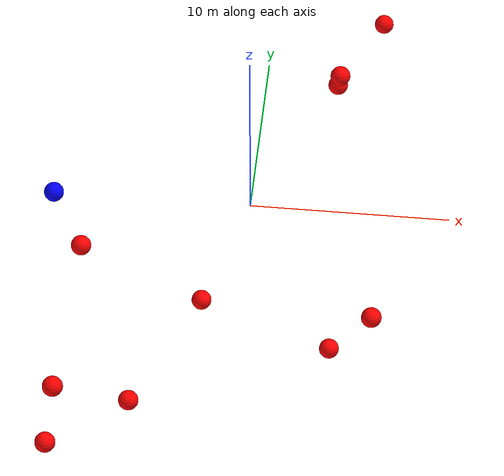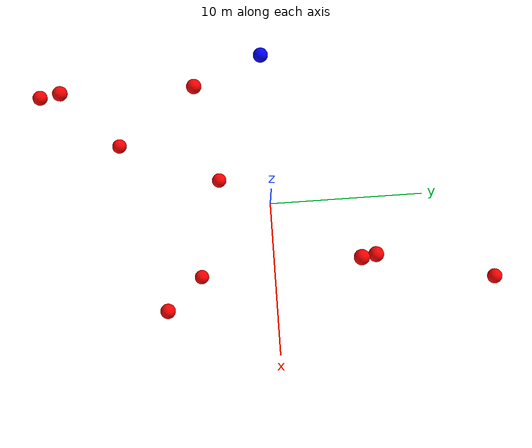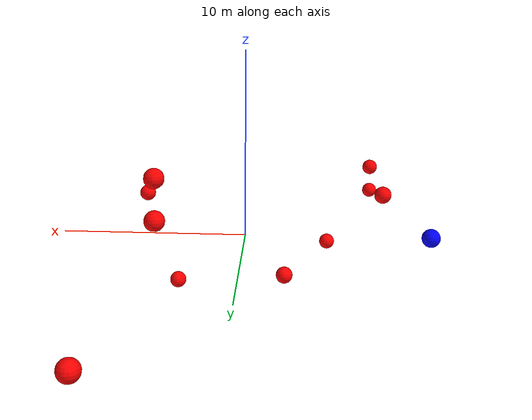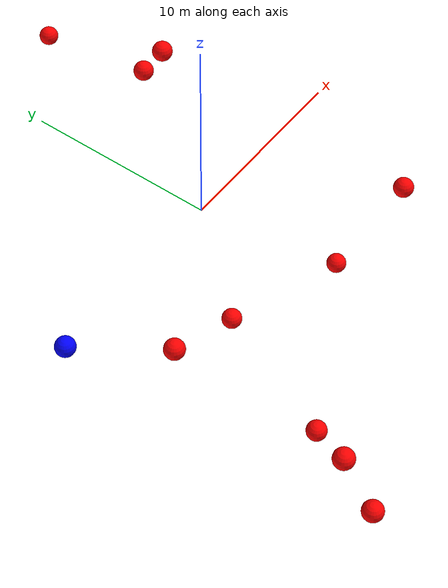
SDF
<?xml version="1.0" ?>
<sdf version="1.8">
    <world name="3d_world">
        <physics name="1ms" type="ode">
            <max_step_size>0.001</max_step_size>
            <real_time_factor>1.0</real_time_factor>
            <real_time_update_rate>1000.0</real_time_update_rate>
        </physics>
        <gravity>0 0 0</gravity>

        <plugin
            filename="gz-sim-physics-system"
            name="gz::sim::v8::systems::Physics">
        </plugin>
        <plugin
            filename="libignition-gazebo-user-commands-system.so"
            name="ignition::gazebo::systems::UserCommands">
        </plugin>
        <plugin
            filename="gz-sim-scene-broadcaster-system"
            name="gz::sim::systems::SceneBroadcaster">
        </plugin>
        <plugin
            filename="gz-sim-sensors-system"
            name="gz::sim::systems::Sensors">
            <render_engine>ogre2</render_engine>
        </plugin>

        <light type="directional" name="sun">
            <cast_shadows>true</cast_shadows>
            <pose>0 0 10 0 0 0</pose>
            <diffuse>0.8 0.8 0.8 1</diffuse>
            <specular>0.2 0.2 0.2 1</specular>
            <attenuation>
                <range>1000</range>
                <constant>0.9</constant>
                <linear>0.01</linear>
                <quadratic>0.001</quadratic>
            </attenuation>
            <direction>-0.5 0.1 -0.9</direction>
        </light>

        <!-- AGENTE -->
        <model name='agente' canonical_link='chassis'>
            <pose relative_to='world'>-10.0 0 0.0 0 0 0</pose>
            <link name='chassis'>
                <pose relative_to='__model__'>0.0 0 0.0 0 0 0</pose>
                <inertial>
                    <mass>1.14395</mass>
                    <inertia>
                        <ixx>0.095329</ixx>
                        <ixy>0</ixy>
                        <ixz>0</ixz>
                        <iyy>0.381317</iyy>
                        <iyz>0</iyz>
                        <izz>0.476646</izz>
                    </inertia>
                </inertial>
                <visual name='visual'>
                    <geometry>
                        <sphere>
                            <radius>0.5</radius>
                        </sphere>
                    </geometry>
                    <material>
                        <ambient>0.0 0.0 1.0 1</ambient>
                        <diffuse>0.0 0.0 1.0 1</diffuse>
                        <specular>0.0 0.0 1.0 1</specular>
                    </material>
                </visual>
                <collision name='collision'>
                    <geometry>
                        <sphere>
                            <radius>0.5</radius>
                        </sphere>
                    </geometry>
                </collision>
                <enable_gravity>false</enable_gravity>
            </link>

            <link name='lidar_link'>
                <pose relative_to='chassis'>0.0 0 0.1 0 0 0</pose>
                <inertial>
                    <mass>0.1</mass>
                    <inertia>
                        <ixx>0.000166667</ixx>
                        <iyy>0.000166667</iyy>
                        <izz>0.000166667</izz>
                    </inertia>
                </inertial>
                <collision name='collision'>
                    <geometry>
                        <cylinder>
                            <radius>0.05</radius>
                            <length>0.1</length>
                        </cylinder>
                    </geometry>
                </collision>
                <visual name='visual'>
                    <geometry>
                        <cylinder>
                            <radius>0.05</radius>
                            <length>0.1</length>
                        </cylinder>
                    </geometry>
                    <material>
                        <ambient>0.0 1.0 0.0 1</ambient>
                        <diffuse>0.0 1.0 0.0 1</diffuse>
                        <specular>0.0 1.0 0.0 1</specular>
                    </material>
                </visual>
                <sensor name="lidar" type="gpu_lidar">
                    <topic>scan</topic>
                    <update_rate>10</update_rate>
                    <lidar>
                        <scan>
                            <horizontal>
                                <samples>5000</samples>
                                <resolution>1</resolution>
                                <min_angle>-3.14159</min_angle>
                                <max_angle>3.14159</max_angle>
                            </horizontal>
                        </scan>
                        <range>
                            <min>0.1</min>
                            <max>10.0</max>
                            <resolution>0.01</resolution>
                        </range>
                    </lidar>
                    <visualize>true</visualize>
                    <always_on>true</always_on>
                    <update_rate>10</update_rate>
                    <pose_frame>lidar</pose_frame>
                </sensor>
                <enable_gravity>false</enable_gravity>
            </link>

            <joint name="lidar_joint" type="fixed">
                <parent>chassis</parent>
                <child>lidar_link</child>
            </joint>

            <plugin
                filename="ignition-gazebo-joint-state-publisher-system"
                name="ignition::gazebo::systems::JointStatePublisher">
            </plugin>
            <plugin
                filename="ignition-gazebo-odometry-publisher-system"
                name="ignition::gazebo::systems::OdometryPublisher">
                <dimensions>3</dimensions>
            </plugin>
            <plugin
                filename="ignition-gazebo-velocity-control-system"
                name="ignition::gazebo::systems::VelocityControl">
                <initial_linear>0.0 0 0</initial_linear>
                <initial_angular>0 0 0.0</initial_angular>
            </plugin>
            <plugin
                filename="libignition-gazebo-pose-publisher-system.so"
                name="ignition::gazebo::systems::PosePublisher">
                <topic>/agente/pose</topic>
                <frame_id>agente</frame_id>
                <update_rate>30</update_rate>
            </plugin>
        </model>

        <!-- OBSTACLE 1 -->
        <model name='obstacle_1' canonical_link='obstacle'>
            <static>false</static>
            <pose relative_to='world'>-8.08 -13.32 1.05 0 0 0</pose>
            <link name='obstacle'>
                <pose relative_to='__model__'>0.0 0 0.0 0 0 0</pose>
                <visual name='visual'>
                    <geometry>
                        <sphere>
                            <radius>0.50</radius>
                        </sphere>
                    </geometry>
                    <material>
                        <ambient>1.0 0.0 0.0 1</ambient>
                        <diffuse>1.0 0.0 0.0 1</diffuse>
                        <specular>1.0 0.0 0.0 1</specular>
                    </material>
                </visual>
                <collision name='collision'>
                    <geometry>
                        <sphere>
                            <radius>0.50</radius>
                        </sphere>
                    </geometry>
                </collision>
                <enable_gravity>false</enable_gravity>
            </link>

            <plugin
                filename="ignition-gazebo-velocity-control-system"
                name="ignition::gazebo::systems::VelocityControl">
                <initial_linear>0.95 1.76 -0.14</initial_linear>
                <initial_angular>0 0 0</initial_angular>
            </plugin>

            <plugin
                filename="ignition-gazebo-odometry-publisher-system"
                name="ignition::gazebo::systems::OdometryPublisher">
                <dimensions>3</dimensions>
            </plugin>
        </model>

        <!-- OBSTACLE 2 -->
        <model name='obstacle_2' canonical_link='obstacle'>
            <static>false</static>
            <pose relative_to='world'>5.76 14.59 -0.85 0 0 0</pose>
            <link name='obstacle'>
                <pose relative_to='__model__'>0.0 0 0.0 0 0 0</pose>
                <visual name='visual'>
                    <geometry>
                        <sphere>
                            <radius>0.50</radius>
                        </sphere>
                    </geometry>
                    <material>
                        <ambient>1.0 0.0 0.0 1</ambient>
                        <diffuse>1.0 0.0 0.0 1</diffuse>
                        <specular>1.0 0.0 0.0 1</specular>
                    </material>
                </visual>
                <collision name='collision'>
                    <geometry>
                        <sphere>
                            <radius>0.50</radius>
                        </sphere>
                    </geometry>
                </collision>
                <enable_gravity>false</enable_gravity>
            </link>

            <plugin
                filename="ignition-gazebo-velocity-control-system"
                name="ignition::gazebo::systems::VelocityControl">
                <initial_linear>-0.05 -2.00 0.12</initial_linear>
                <initial_angular>0 0 0</initial_angular>
            </plugin>

            <plugin
                filename="ignition-gazebo-odometry-publisher-system"
                name="ignition::gazebo::systems::OdometryPublisher">
                <dimensions>3</dimensions>
            </plugin>
        </model>

        <!-- OBSTACLE 3 -->
        <model name='obstacle_3' canonical_link='obstacle'>
            <static>false</static>
            <pose relative_to='world'>6.61 -7.15 0.48 0 0 0</pose>
            <link name='obstacle'>
                <pose relative_to='__model__'>0.0 0 0.0 0 0 0</pose>
                <visual name='visual'>
                    <geometry>
                        <sphere>
                            <radius>0.50</radius>
                        </sphere>
                    </geometry>
                    <material>
                        <ambient>1.0 0.0 0.0 1</ambient>
                        <diffuse>1.0 0.0 0.0 1</diffuse>
                        <specular>1.0 0.0 0.0 1</specular>
                    </material>
                </visual>
                <collision name='collision'>
                    <geometry>
                        <sphere>
                            <radius>0.50</radius>
                        </sphere>
                    </geometry>
                </collision>
                <enable_gravity>false</enable_gravity>
            </link>

            <plugin
                filename="ignition-gazebo-velocity-control-system"
                name="ignition::gazebo::systems::VelocityControl">
                <initial_linear>-1.30 1.52 -0.10</initial_linear>
                <initial_angular>0 0 0</initial_angular>
            </plugin>

            <plugin
                filename="ignition-gazebo-odometry-publisher-system"
                name="ignition::gazebo::systems::OdometryPublisher">
                <dimensions>3</dimensions>
            </plugin>
        </model>

        <!-- OBSTACLE 4 -->
        <model name='obstacle_4' canonical_link='obstacle'>
            <static>false</static>
            <pose relative_to='world'>-2.16 -3.43 -3.53 0 0 0</pose>
            <link name='obstacle'>
                <pose relative_to='__model__'>0.0 0 0.0 0 0 0</pose>
                <visual name='visual'>
                    <geometry>
                        <sphere>
                            <radius>0.50</radius>
                        </sphere>
                    </geometry>
                    <material>
                        <ambient>1.0 0.0 0.0 1</ambient>
                        <diffuse>1.0 0.0 0.0 1</diffuse>
                        <specular>1.0 0.0 0.0 1</specular>
                    </material>
                </visual>
                <collision name='collision'>
                    <geometry>
                        <sphere>
                            <radius>0.50</radius>
                        </sphere>
                    </geometry>
                </collision>
                <enable_gravity>false</enable_gravity>
            </link>

            <plugin
                filename="ignition-gazebo-velocity-control-system"
                name="ignition::gazebo::systems::VelocityControl">
                <initial_linear>-0.39 1.26 1.30</initial_linear>
                <initial_angular>0 0 0</initial_angular>
            </plugin>

            <plugin
                filename="ignition-gazebo-odometry-publisher-system"
                name="ignition::gazebo::systems::OdometryPublisher">
                <dimensions>3</dimensions>
            </plugin>
        </model>

        <!-- OBSTACLE 5 -->
        <model name='obstacle_5' canonical_link='obstacle'>
            <static>false</static>
            <pose relative_to='world'>3.87 6.44 2.55 0 0 0</pose>
            <link name='obstacle'>
                <pose relative_to='__model__'>0.0 0 0.0 0 0 0</pose>
                <visual name='visual'>
                    <geometry>
                        <sphere>
                            <radius>0.50</radius>
                        </sphere>
                    </geometry>
                    <material>
                        <ambient>1.0 0.0 0.0 1</ambient>
                        <diffuse>1.0 0.0 0.0 1</diffuse>
                        <specular>1.0 0.0 0.0 1</specular>
                    </material>
                </visual>
                <collision name='collision'>
                    <geometry>
                        <sphere>
                            <radius>0.50</radius>
                        </sphere>
                    </geometry>
                </collision>
                <enable_gravity>false</enable_gravity>
            </link>

            <plugin
                filename="ignition-gazebo-velocity-control-system"
                name="ignition::gazebo::systems::VelocityControl">
                <initial_linear>0.03 -1.14 -0.45</initial_linear>
                <initial_angular>0 0 0</initial_angular>
            </plugin>

            <plugin
                filename="ignition-gazebo-odometry-publisher-system"
                name="ignition::gazebo::systems::OdometryPublisher">
                <dimensions>3</dimensions>
            </plugin>
        </model>

        <!-- OBSTACLE 6 -->
        <model name='obstacle_6' canonical_link='obstacle'>
            <static>false</static>
            <pose relative_to='world'>-7.93 -4.51 1.22 0 0 0</pose>
            <link name='obstacle'>
                <pose relative_to='__model__'>0.0 0 0.0 0 0 0</pose>
                <visual name='visual'>
                    <geometry>
                        <sphere>
                            <radius>0.50</radius>
                        </sphere>
                    </geometry>
                    <material>
                        <ambient>1.0 0.0 0.0 1</ambient>
                        <diffuse>1.0 0.0 0.0 1</diffuse>
                        <specular>1.0 0.0 0.0 1</specular>
                    </material>
                </visual>
                <collision name='collision'>
                    <geometry>
                        <sphere>
                            <radius>0.50</radius>
                        </sphere>
                    </geometry>
                </collision>
                <enable_gravity>false</enable_gravity>
            </link>

            <plugin
                filename="ignition-gazebo-velocity-control-system"
                name="ignition::gazebo::systems::VelocityControl">
                <initial_linear>1.25 1.51 -0.41</initial_linear>
                <initial_angular>0 0 0</initial_angular>
            </plugin>

            <plugin
                filename="ignition-gazebo-odometry-publisher-system"
                name="ignition::gazebo::systems::OdometryPublisher">
                <dimensions>3</dimensions>
            </plugin>
        </model>

        <!-- OBSTACLE 7 -->
        <model name='obstacle_7' canonical_link='obstacle'>
            <static>false</static>
            <pose relative_to='world'>4.46 -5.12 -4.59 0 0 0</pose>
            <link name='obstacle'>
                <pose relative_to='__model__'>0.0 0 0.0 0 0 0</pose>
                <visual name='visual'>
                    <geometry>
                        <sphere>
                            <radius>0.50</radius>
                        </sphere>
                    </geometry>
                    <material>
                        <ambient>1.0 0.0 0.0 1</ambient>
                        <diffuse>1.0 0.0 0.0 1</diffuse>
                        <specular>1.0 0.0 0.0 1</specular>
                    </material>
                </visual>
                <collision name='collision'>
                    <geometry>
                        <sphere>
                            <radius>0.50</radius>
                        </sphere>
                    </geometry>
                </collision>
                <enable_gravity>false</enable_gravity>
            </link>

            <plugin
                filename="ignition-gazebo-velocity-control-system"
                name="ignition::gazebo::systems::VelocityControl">
                <initial_linear>-1.54 0.95 0.85</initial_linear>
                <initial_angular>0 0 0</initial_angular>
            </plugin>

            <plugin
                filename="ignition-gazebo-odometry-publisher-system"
                name="ignition::gazebo::systems::OdometryPublisher">
                <dimensions>3</dimensions>
            </plugin>
        </model>

        <!-- OBSTACLE 8 -->
        <model name='obstacle_8' canonical_link='obstacle'>
            <static>false</static>
            <pose relative_to='world'>-5.02 -10.23 -3.50 0 0 0</pose>
            <link name='obstacle'>
                <pose relative_to='__model__'>0.0 0 0.0 0 0 0</pose>
                <visual name='visual'>
                    <geometry>
                        <sphere>
                            <radius>0.50</radius>
                        </sphere>
                    </geometry>
                    <material>
                        <ambient>1.0 0.0 0.0 1</ambient>
                        <diffuse>1.0 0.0 0.0 1</diffuse>
                        <specular>1.0 0.0 0.0 1</specular>
                    </material>
                </visual>
                <collision name='collision'>
                    <geometry>
                        <sphere>
                            <radius>0.50</radius>
                        </sphere>
                    </geometry>
                </collision>
                <enable_gravity>false</enable_gravity>
            </link>

            <plugin
                filename="ignition-gazebo-velocity-control-system"
                name="ignition::gazebo::systems::VelocityControl">
                <initial_linear>0.97 1.65 0.57</initial_linear>
                <initial_angular>0 0 0</initial_angular>
            </plugin>

            <plugin
                filename="ignition-gazebo-odometry-publisher-system"
                name="ignition::gazebo::systems::OdometryPublisher">
                <dimensions>3</dimensions>
            </plugin>
        </model>

        <!-- OBSTACLE 9 -->
        <model name='obstacle_9' canonical_link='obstacle'>
            <static>false</static>
            <pose relative_to='world'>4.04 5.35 4.31 0 0 0</pose>
            <link name='obstacle'>
                <pose relative_to='__model__'>0.0 0 0.0 0 0 0</pose>
                <visual name='visual'>
                    <geometry>
                        <sphere>
                            <radius>0.50</radius>
                        </sphere>
                    </geometry>
                    <material>
                        <ambient>1.0 0.0 0.0 1</ambient>
                        <diffuse>1.0 0.0 0.0 1</diffuse>
                        <specular>1.0 0.0 0.0 1</specular>
                    </material>
                </visual>
                <collision name='collision'>
                    <geometry>
                        <sphere>
                            <radius>0.50</radius>
                        </sphere>
                    </geometry>
                </collision>
                <enable_gravity>false</enable_gravity>
            </link>

            <plugin
                filename="ignition-gazebo-velocity-control-system"
                name="ignition::gazebo::systems::VelocityControl">
                <initial_linear>-0.56 -1.17 -0.94</initial_linear>
                <initial_angular>0 0 0</initial_angular>
            </plugin>

            <plugin
                filename="ignition-gazebo-odometry-publisher-system"
                name="ignition::gazebo::systems::OdometryPublisher">
                <dimensions>3</dimensions>
            </plugin>
        </model>

        <!-- OBSTACLE 10 -->
        <model name='obstacle_10' canonical_link='obstacle'>
            <static>false</static>
            <pose relative_to='world'>-8.30 -15.07 -1.04 0 0 0</pose>
            <link name='obstacle'>
                <pose relative_to='__model__'>0.0 0 0.0 0 0 0</pose>
                <visual name='visual'>
                    <geometry>
                        <sphere>
                            <radius>0.50</radius>
                        </sphere>
                    </geometry>
                    <material>
                        <ambient>1.0 0.0 0.0 1</ambient>
                        <diffuse>1.0 0.0 0.0 1</diffuse>
                        <specular>1.0 0.0 0.0 1</specular>
                    </material>
                </visual>
                <collision name='collision'>
                    <geometry>
                        <sphere>
                            <radius>0.50</radius>
                        </sphere>
                    </geometry>
                </collision>
                <enable_gravity>false</enable_gravity>
            </link>

            <plugin
                filename="ignition-gazebo-velocity-control-system"
                name="ignition::gazebo::systems::VelocityControl">
                <initial_linear>1.21 1.59 0.11</initial_linear>
                <initial_angular>0 0 0</initial_angular>
            </plugin>

            <plugin
                filename="ignition-gazebo-odometry-publisher-system"
                name="ignition::gazebo::systems::OdometryPublisher">
                <dimensions>3</dimensions>
            </plugin>
        </model>

    </world>
</sdf>
